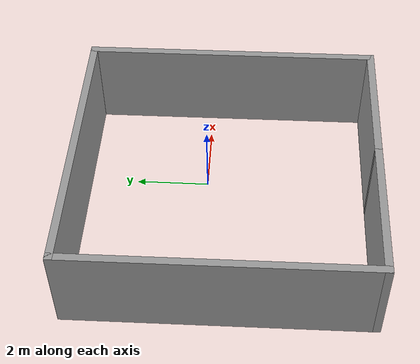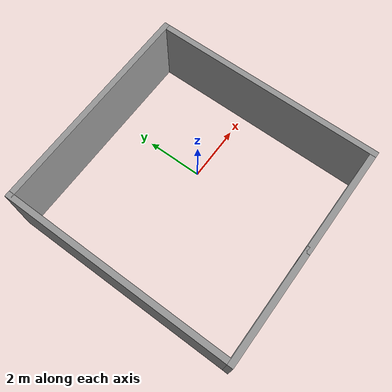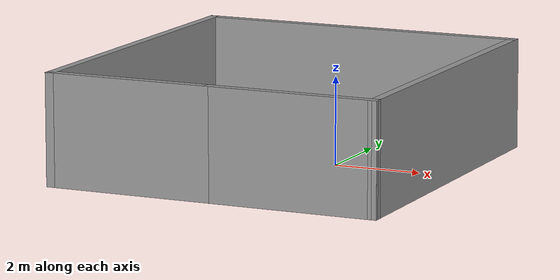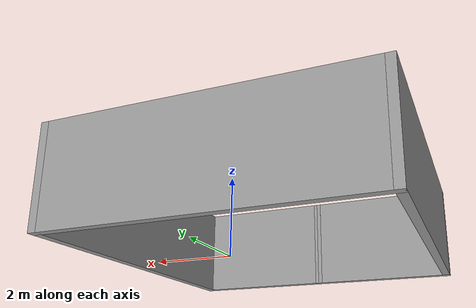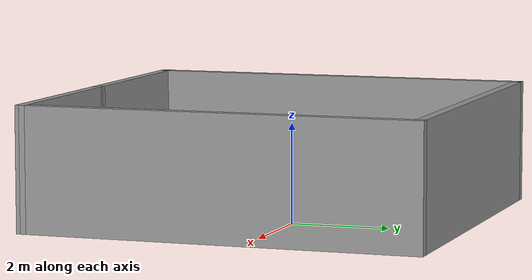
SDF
<?xml version='1.0'?>
<sdf version='1.5'>
  <model name='miniWorld.world'>
    <link name='Wall_0'>
      <collision name='Wall_0_Collision'>
        <geometry>
          <box>
            <size>3.96 0.2 2.5</size>
          </box>
        </geometry>
        <pose>0 0 1.25 0 -0 0</pose>
      </collision>
      <visual name='Wall_0_Visual'>
        <pose>0 0 1.25 0 -0 0</pose>
        <geometry>
          <box>
            <size>3.96 0.2 2.5</size>
          </box>
        </geometry>
        <material>
          <script>
            <uri>file://media/materials/scripts/gazebo.material</uri>
            <name>Gazebo/Grey</name>
          </script>
        </material>
      </visual>
      <velocity_decay>
        <linear>0</linear>
        <angular>0</angular>
      </velocity_decay>
      <pose>-2.77 -4.51 0 0 -0 3.14159</pose>
    </link>
    <link name='Wall_1'>
      <collision name='Wall_1_Collision'>
        <geometry>
          <box>
            <size>8.12455 0.2 2.5</size>
          </box>
        </geometry>
        <pose>0 0 1.25 0 -0 0</pose>
      </collision>
      <visual name='Wall_1_Visual'>
        <pose>0 0 1.25 0 -0 0</pose>
        <geometry>
          <box>
            <size>8.12455 0.2 2.5</size>
          </box>
        </geometry>
        <material>
          <script>
            <uri>file://media/materials/scripts/gazebo.material</uri>
            <name>Gazebo/Grey</name>
          </script>
        </material>
      </visual>
      <velocity_decay>
        <linear>0</linear>
        <angular>0</angular>
      </velocity_decay>
      <pose>-4.65 -0.547723 0 0 -0 1.5708</pose>
    </link>
    <link name='Wall_2'>
      <collision name='Wall_2_Collision'>
        <geometry>
          <box>
            <size>7.698 0.2 2.5</size>
          </box>
        </geometry>
        <pose>0 0 1.25 0 -0 0</pose>
      </collision>
      <visual name='Wall_2_Visual'>
        <pose>0 0 1.25 0 -0 0</pose>
        <geometry>
          <box>
            <size>7.698 0.2 2.5</size>
          </box>
        </geometry>
        <material>
          <script>
            <uri>file://media/materials/scripts/gazebo.material</uri>
            <name>Gazebo/Grey</name>
          </script>
        </material>
      </visual>
      <velocity_decay>
        <linear>0</linear>
        <angular>0</angular>
      </velocity_decay>
      <pose>-0.900998 3.41455 0 0 -0 0</pose>
    </link>
    <link name='Wall_3'>
      <collision name='Wall_3_Collision'>
        <geometry>
          <box>
            <size>8.12929 0.2 2.5</size>
          </box>
        </geometry>
        <pose>0 0 1.25 0 -0 0</pose>
      </collision>
      <visual name='Wall_3_Visual'>
        <pose>0 0 1.25 0 -0 0</pose>
        <geometry>
          <box>
            <size>8.12929 0.2 2.5</size>
          </box>
        </geometry>
        <material>
          <script>
            <uri>file://media/materials/scripts/gazebo.material</uri>
            <name>Gazebo/Grey</name>
          </script>
        </material>
      </visual>
      <velocity_decay>
        <linear>0</linear>
        <angular>0</angular>
      </velocity_decay>
      <pose>2.848 -0.550093 0 0 0 -1.5708</pose>
    </link>
    <link name='Wall_4'>
      <collision name='Wall_4_Collision'>
        <geometry>
          <box>
            <size>3.93801 0.2 2.5</size>
          </box>
        </geometry>
        <pose>0 0 1.25 0 -0 0</pose>
      </collision>
      <visual name='Wall_4_Visual'>
        <pose>0 0 1.25 0 -0 0</pose>
        <geometry>
          <box>
            <size>3.93801 0.2 2.5</size>
          </box>
        </geometry>
        <material>
          <script>
            <uri>file://media/materials/scripts/gazebo.material</uri>
            <name>Gazebo/Grey</name>
          </script>
        </material>
      </visual>
      <velocity_decay>
        <linear>0</linear>
        <angular>0</angular>
      </velocity_decay>
      <pose>0.979002 -4.51237 0 0 -0 3.14032</pose>
    </link>
    <static>1</static>
  </model>
</sdf>
